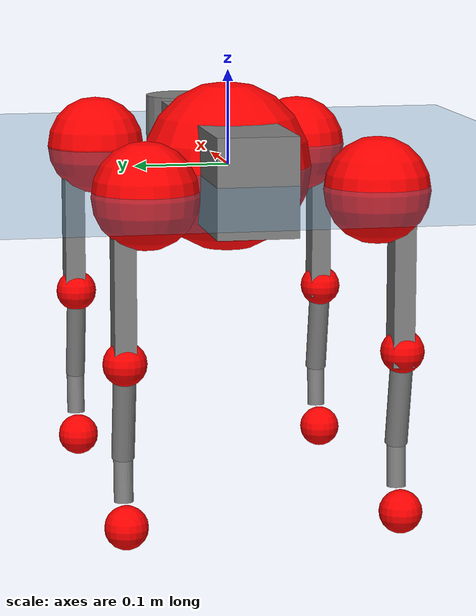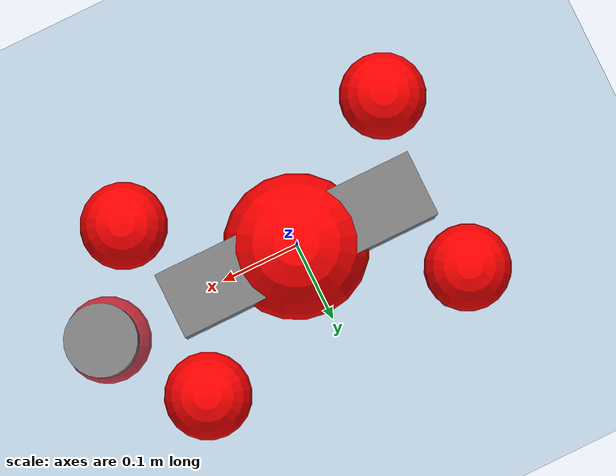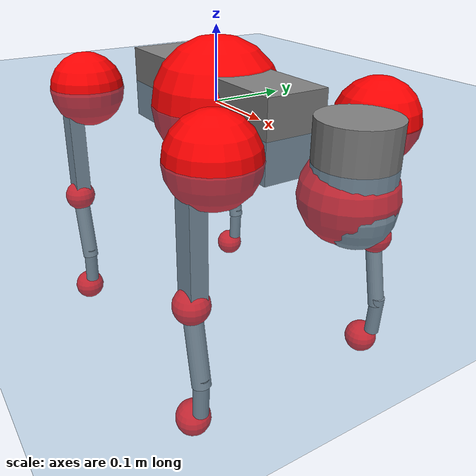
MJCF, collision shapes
<mujoco model="go2">
  <compiler angle="radian" assetdir="assets" balanceinertia="true" inertiafromgeom="false"/>

  <option timestep="0.005" density="1.2" viscosity="2e-05"/>

  <size nkey="1"/>

  <visual>
    <quality shadowsize="8192"/>
    <map shadowclip="0.5"/>
  </visual>

  <default>
    <default class="/">
      <geom contype="0" conaffinity="0" group="1" solref="-1000 -80"/>
      <site size="0.01 0.005 0.005" group="5"/>
      <general forcelimited="true" biastype="affine" gainprm="20" biasprm="0 -20 -0.5"/>
      <default class="go2">
        <joint armature="0.01" damping="0.01" frictionloss="0.2"/>
        <geom condim="1" margin="0.001"/>
        <default class="visual">
          <geom type="mesh" group="2"/>
        </default>
        <default class="collision">
          <geom group="3"/>
          <default class="foot">
            <geom size="0.022 0 0" condim="6" priority="1" friction="0.8 0.02 0.01" solimp="0.015 1 0.022"/>
          </default>
        </default>
        <default class="reward_collision_sphere">
          <geom group="5" rgba="1 0 0 1"/>
        </default>
      </default>
    </default>
  </default>

  <asset>
    <texture type="skybox" colorspace="auto" name="//unnamed_texture_0" builtin="gradient" rgb1="0.95 0.95 0.95" rgb2="0.95 0.95 0.95" width="100" height="600"/>
    <texture type="2d" colorspace="auto" name="texplane" builtin="checker" rgb1="0.345 0.575 0.748" rgb2="0.345 0.575 0.748" markrgb="1 1 1" width="512" height="512"/>
    <material name="MatPlane" class="/" texture="texplane" texuniform="true" texrepeat="2 2" specular="0.9"/>
    <material name="metal" class="/" rgba="0.9 0.95 0.95 1"/>
    <material name="black" class="/" rgba="0 0 0 1"/>
    <material name="white" class="/"/>
    <material name="gray" class="/" rgba="0.671705 0.692426 0.77427 1"/>
    <mesh name="base_0" class="/" file="base_0.obj"/>
    <mesh name="base_1" class="/" file="base_1.obj"/>
    <mesh name="base_2" class="/" file="base_2.obj"/>
    <mesh name="base_3" class="/" file="base_3.obj"/>
    <mesh name="base_4" class="/" file="base_4.obj"/>
    <mesh name="hip_0" class="/" file="hip_0.obj"/>
    <mesh name="hip_1" class="/" file="hip_1.obj"/>
    <mesh name="thigh_0" class="/" file="thigh_0.obj"/>
    <mesh name="thigh_1" class="/" file="thigh_1.obj"/>
    <mesh name="thigh_mirror_0" class="/" file="thigh_mirror_0.obj"/>
    <mesh name="thigh_mirror_1" class="/" file="thigh_mirror_1.obj"/>
    <mesh name="calf_0" class="/" file="calf_0.obj"/>
    <mesh name="calf_1" class="/" file="calf_1.obj"/>
    <mesh name="calf_mirror_0" class="/" file="calf_mirror_0.obj"/>
    <mesh name="calf_mirror_1" class="/" file="calf_mirror_1.obj"/>
    <mesh name="foot" class="/" file="foot.obj"/>
  </asset>

  <worldbody>
    <geom name="floor" class="/" size="100 100 0.125" type="plane" group="0" material="MatPlane"/>
    <light name="toplight_shadow" class="/" pos="0 0 5" dir="0.0990148 0.0990148 -0.990148" type="directional" ambient="0.04 0.04 0.04" diffuse="0.55 0.55 0.55" specular="0.12 0.12 0.12"/>
    <light name="toplight_fill" class="/" pos="0 0 5" dir="0.0990148 0.0990148 -0.990148" type="directional" castshadow="false" ambient="0.04 0.04 0.04" diffuse="0.3 0.3 0.3" specular="0.08 0.08 0.08"/>
    <body name="trunk" childclass="go2" pos="0.00119389 0.000962766 -0.00240397" quat="1 -2.93167e-05 -0.000224741 0.000927904">
      <inertial pos="0.0176652 0.0024355 -0.00344309" quat="-0.00171298 0.712384 -0.00204593 0.701784" mass="5.11229" diaginertia="0.0719683 0.0974531 0.00771882"/>
      <joint name="//unnamed_joint_0" type="free" armature="0" damping="0" frictionloss="0"/>
      <geom name="//unnamed_geom_1" class="visual" material="black" mesh="base_0"/>
      <geom name="//unnamed_geom_2" class="visual" material="black" mesh="base_1"/>
      <geom name="//unnamed_geom_3" class="visual" material="black" mesh="base_2"/>
      <geom name="//unnamed_geom_4" class="visual" material="white" mesh="base_3"/>
      <geom name="//unnamed_geom_5" class="visual" material="gray" mesh="base_4"/>
      <geom name="trunk_1" class="collision" size="0.169385 0.0420987 0.0513289" type="box"/>
      <geom name="trunk_2" class="collision" size="0.0450254 0.0405228" pos="0.261991 0 0.00787429" type="cylinder"/>
      <geom name="trunk_3" class="collision" size="0.0423238" pos="0.269345 0 -0.0472458"/>
      <geom name="//unnamed_geom_9" class="reward_collision_sphere" size="0.0900507"/>
      <geom name="//unnamed_geom_10" class="reward_collision_sphere" size="0.0540304" pos="0.257394 0 -0.0354343"/>
      <site name="imu" pos="-0.0183307 0.0133988 0.0438082" size="0.00900507"/>
      <camera name="track" pos="0 -1.98965 0" quat="0.707107 0.707107 0 0" mode="trackcom"/>
      <camera name="ego_camera" pos="0.286811 0 0.0354343" quat="-0.5 -0.5 0.5 0.5"/>
      <body name="FL_hip" pos="0.176119 0.0467761 0.00313018" quat="0.999999 3.85675e-05 0.00103153 4.48893e-05">
        <inertial pos="-0.00457589 -0.000605892 0.000810518" quat="0.499202 0.501582 0.501276 0.497931" mass="0.480652" diaginertia="0.000589083 0.000600078 0.000145718"/>
        <joint name="FL_hip_joint" pos="0 0 0" axis="0.999988 0.00273174 0.00401526" range="-1.01998 1.07059" armature="0.00902808" damping="0.0213308" frictionloss="0.180331"/>
        <geom name="//unnamed_geom_11" class="visual" material="metal" mesh="hip_0"/>
        <geom name="//unnamed_geom_12" class="visual" material="gray" mesh="hip_1"/>
        <geom name="//unnamed_geom_13" class="collision" size="0.0414233 0.0180101" pos="0 0.0795862 0" quat="0.707107 0.707107 0 0" type="cylinder"/>
        <geom name="//unnamed_geom_14" class="reward_collision_sphere" size="0.0540304" pos="0 0.0696379 0"/>
        <body name="FL_thigh" pos="0.00131952 0.0956116 0.00311759" quat="0.999999 9.28275e-05 0.000805675 0.000810595">
          <inertial pos="-0.00101191 -0.0248494 -0.027708" quat="0.829739 0.0843028 -0.0201373 0.55138" mass="0.820763" diaginertia="0.00388724 0.005426 0.000259852"/>
          <joint name="FL_thigh_joint" pos="0 0 0" axis="-0.00118101 0.999999 0.000458946" range="-1.51942 3.49813" armature="0.00814377" damping="0.014451" frictionloss="0.166002"/>
          <geom name="//unnamed_geom_15" class="visual" material="metal" mesh="thigh_0"/>
          <geom name="//unnamed_geom_16" class="visual" material="gray" mesh="thigh_1"/>
          <geom name="//unnamed_geom_17" class="collision" size="0.095904 0.0110312 0.0153086" pos="0 0 -0.0838612" quat="0.707107 0 0.707107 0" type="box"/>
          <body name="FL_calf" pos="-0.0005186 -0.0020663 -0.168971" quat="0.999999 -0.000370452 -0.00102307 0.000917479">
            <inertial pos="0.00327328 -0.000973391 -0.107989" quat="0.713201 0.00066524 0.00417686 0.700947" mass="0.175936" diaginertia="0.000955964 0.00149498 1.65e-05"/>
            <joint name="FL_calf_joint" pos="0 0 0" axis="-0.0032748 0.999786 -0.0204397" stiffness="0.0138829" range="-2.76227 -0.855976" armature="0.0100423" damping="0" frictionloss="0.203834"/>
            <geom name="//unnamed_geom_18" class="visual" material="gray" mesh="calf_0"/>
            <geom name="//unnamed_geom_19" class="visual" material="black" mesh="calf_1"/>
            <geom name="FL_calf0" class="collision" size="0.0108061 0.0540304" pos="0.00735412 0 -0.0472458" quat="0.994493 0 -0.104807 0" type="cylinder"/>
            <geom name="//unnamed_geom_21" class="collision" size="0.00990558 0.0292665" pos="0.0183853 0 -0.11654" quat="0.999688 0 0.0249974 0" type="cylinder"/>
            <geom name="//unnamed_geom_22" class="visual" pos="0 0 -0.167722" quat="1 0 0 0" material="black" mesh="foot"/>
            <geom name="FL_foot" class="foot" size="0.0170928" pos="-0.00183853 0 -0.167722"/>
            <geom name="//unnamed_geom_24" class="reward_collision_sphere" size="0.0225127"/>
            <geom name="//unnamed_geom_25" class="reward_collision_sphere" size="0.0225127" pos="-0.00183853 0 -0.167722"/>
            <site name="FL_foot" class="foot" pos="-0.00183853 0 -0.167722" size="0.00900507"/>
          </body>
        </body>
      </body>
      <body name="FR_hip" pos="0.177753 -0.0455083 -0.000965185" quat="0.999999 -5.98596e-06 -0.000743524 0.000963158">
        <inertial pos="-0.00208736 -0.0041586 -0.000211797" quat="0.506607 0.496243 0.499306 0.497781" mass="0.49182" diaginertia="0.000541315 0.000560296 0.000135385"/>
        <joint name="FR_hip_joint" pos="0 0 0" axis="0.999884 0.015195 -0.000710206" range="-1.02047 1.04537" armature="0.00939959" damping="0.00536392" frictionloss="0.158288"/>
        <geom name="//unnamed_geom_26" class="visual" pos="0 1.80676e-09 7.74957e-08" quat="4.63268e-05 1 0 0" material="metal" mesh="hip_0"/>
        <geom name="//unnamed_geom_27" class="visual" pos="0 2.92898e-09 -1.91677e-07" quat="4.63268e-05 1 0 0" material="gray" mesh="hip_1"/>
        <geom name="//unnamed_geom_28" class="collision" size="0.0414233 0.0180101" pos="0 -0.0795862 0" quat="0.707107 0.707107 0 0" type="cylinder"/>
        <geom name="//unnamed_geom_29" class="reward_collision_sphere" size="0.0540304" pos="0 -0.0696379 0"/>
        <body name="FR_thigh" pos="0.00047007 -0.0961849 0.00258271" quat="1 -0.000464375 -7.87312e-05 -0.000256707">
          <inertial pos="-0.000435818 0.0195835 -0.0246515" quat="0.562282 -0.0139527 0.0831481 0.822636" mass="0.844146" diaginertia="0.00383576 0.0054274 0.000265934"/>
          <joint name="FR_thigh_joint" pos="0 0 0" axis="-0.00136688 -0.999997 -0.00208931" range="-3.47351 1.62075" armature="0.00910418" damping="0.00687351" frictionloss="0.200608"/>
          <geom name="//unnamed_geom_30" class="visual" material="metal" mesh="thigh_mirror_0"/>
          <geom name="//unnamed_geom_31" class="visual" material="gray" mesh="thigh_mirror_1"/>
          <geom name="//unnamed_geom_32" class="collision" size="0.095904 0.0110312 0.0153086" pos="0 0 -0.0838612" quat="0.707107 0 0.707107 0" type="box"/>
          <body name="FR_calf" pos="0.00109139 -0.00278497 -0.169208" quat="1 0.000139329 6.54268e-07 1.82512e-05">
            <inertial pos="0.00544998 -0.000173076 -0.111267" quat="0.696442 -0.00706443 -0.00215143 0.717575" mass="0.177687" diaginertia="0.000982678 0.00142584 1.55352e-05"/>
            <joint name="FR_calf_joint" pos="0 0 0" axis="-0.00609912 -0.999954 -0.00737458" range="0.818836 2.77715" armature="0.00839983" damping="0.0244739" frictionloss="0.162223"/>
            <geom name="//unnamed_geom_33" class="visual" material="gray" mesh="calf_mirror_0"/>
            <geom name="//unnamed_geom_34" class="visual" material="black" mesh="calf_mirror_1"/>
            <geom name="FR_calf0" class="collision" size="0.0117066 0.0540304" pos="0.00919265 0 -0.0472458" quat="0.995004 0 -0.0998334 0" type="cylinder"/>
            <geom name="//unnamed_geom_36" class="collision" size="0.00990558 0.0292665" pos="0.0183853 0 -0.11654" quat="0.999688 0 0.0249974 0" type="cylinder"/>
            <geom name="//unnamed_geom_37" class="visual" pos="0 0 -0.167722" quat="1 0 0 0" material="black" mesh="foot"/>
            <geom name="FR_foot" class="foot" size="0.0202567" pos="-0.00183853 0 -0.167722"/>
            <geom name="//unnamed_geom_39" class="reward_collision_sphere" size="0.0225127"/>
            <geom name="//unnamed_geom_40" class="reward_collision_sphere" size="0.0225127" pos="-0.00183853 0 -0.167722"/>
            <site name="FR_foot" class="foot" pos="-0.00183853 0 -0.167722" size="0.00900507"/>
          </body>
        </body>
      </body>
      <body name="RL_hip" pos="-0.17651 0.0451916 -0.00301866" quat="1 0.000303996 0.000146564 -0.000216089">
        <inertial pos="0.00652437 0.00380791 -0.00269031" quat="0.507801 0.500337 0.496294 0.495473" mass="0.506044" diaginertia="0.000572534 0.000581313 0.000148994"/>
        <joint name="RL_hip_joint" pos="0 0 0" axis="-0.999849 0.0105719 -0.0137886" stiffness="0.0127153" range="-1.03032 0.989407" armature="0.00796011" damping="0" frictionloss="0.199851"/>
        <geom name="//unnamed_geom_41" class="visual" pos="-1.1485e-09 0 -2.25133e-07" quat="4.63268e-05 0 1 0" material="metal" mesh="hip_0"/>
        <geom name="//unnamed_geom_42" class="visual" pos="-1.86186e-09 0 -1.99661e-07" quat="4.63268e-05 0 1 0" material="gray" mesh="hip_1"/>
        <geom name="//unnamed_geom_43" class="collision" size="0.0414233 0.0180101" pos="0 0.0795862 0" quat="0.707107 0.707107 0 0" type="cylinder"/>
        <geom name="//unnamed_geom_44" class="reward_collision_sphere" size="0.0540304" pos="0 0.0696379 0"/>
        <body name="RL_thigh" pos="0.000630325 0.0920779 0.00166851" quat="1 -0.000238139 -0.000186592 -0.000306141">
          <inertial pos="-0.00334805 -0.0222447 -0.0261648" quat="0.833645 0.0860339 -0.0178656 0.545266" mass="0.866076" diaginertia="0.00391109 0.00570168 0.000277914"/>
          <joint name="RL_thigh_joint" pos="0 0 0" axis="-0.0145564 0.999867 0.00740596" stiffness="0.0114064" range="-0.537621 4.53491" armature="0.0101706" damping="0" frictionloss="0.181992"/>
          <geom name="//unnamed_geom_45" class="visual" material="metal" mesh="thigh_0"/>
          <geom name="//unnamed_geom_46" class="visual" material="gray" mesh="thigh_1"/>
          <geom name="//unnamed_geom_47" class="collision" size="0.095904 0.0110312 0.0153086" pos="0 0 -0.0838612" quat="0.707107 0 0.707107 0" type="box"/>
          <body name="RL_calf" pos="0.000362777 -0.000965302 -0.169559" quat="1 -9.08292e-06 5.50723e-05 -0.00010487">
            <inertial pos="0.00415148 0.000921443 -0.112062" quat="0.708301 0.00749945 0.00671663 0.705838" mass="0.17945" diaginertia="0.000961855 0.00143616 1.60925e-05"/>
            <joint name="RL_calf_joint" pos="0 0 0" axis="-0.00301771 0.999977 -0.00611755" range="-2.71711 -0.790268" armature="0.0101259" damping="0" frictionloss="0.19425"/>
            <geom name="//unnamed_geom_48" class="visual" material="gray" mesh="calf_0"/>
            <geom name="//unnamed_geom_49" class="visual" material="black" mesh="calf_1"/>
            <geom name="RL_calf0" class="collision" size="0.0117066 0.0540304" pos="0.00919265 0 -0.0472458" quat="0.995004 0 -0.0998334 0" type="cylinder"/>
            <geom name="//unnamed_geom_51" class="collision" size="0.00990558 0.0292665" pos="0.0183853 0 -0.11654" quat="0.999688 0 0.0249974 0" type="cylinder"/>
            <geom name="//unnamed_geom_52" class="visual" pos="0 0 -0.167722" quat="1 0 0 0" material="black" mesh="foot"/>
            <geom name="RL_foot" class="foot" size="0.0162067" pos="-0.00183853 0 -0.167722"/>
            <geom name="//unnamed_geom_54" class="reward_collision_sphere" size="0.0225127"/>
            <geom name="//unnamed_geom_55" class="reward_collision_sphere" size="0.0225127" pos="-0.00183853 0 -0.167722"/>
            <site name="RL_foot" class="foot" pos="-0.00183853 0 -0.167722" size="0.00900507"/>
          </body>
        </body>
      </body>
      <body name="RR_hip" pos="-0.176012 -0.0494756 -0.00324748" quat="1 -0.000302565 -0.000183423 -0.000488484">
        <inertial pos="0.00652155 0.00100769 -0.00191281" quat="0.503738 0.487943 0.493715 0.514204" mass="0.495149" diaginertia="0.000579266 0.00058368 0.000147305"/>
        <joint name="RR_hip_joint" pos="0 0 0" axis="-0.999974 -0.00587181 -0.00428675" stiffness="0.010292" range="-1.01016 1.03652" armature="0.00784221" damping="0.00450245" frictionloss="0.176784"/>
        <geom name="//unnamed_geom_56" class="visual" pos="1.15112e-09 1.80676e-09 -3.02629e-07" quat="2.14617e-09 4.63268e-05 4.63268e-05 -1" material="metal" mesh="hip_0"/>
        <geom name="//unnamed_geom_57" class="visual" pos="1.85539e-09 2.92898e-09 -7.98409e-09" quat="2.14617e-09 4.63268e-05 4.63268e-05 -1" material="gray" mesh="hip_1"/>
        <geom name="//unnamed_geom_58" class="collision" size="0.0414233 0.0180101" pos="0 -0.0795862 0" quat="0.707107 0.707107 0 0" type="cylinder"/>
        <geom name="//unnamed_geom_59" class="reward_collision_sphere" size="0.0540304" pos="0 -0.0696379 0"/>
        <body name="RR_thigh" pos="0.000226277 -0.0959026 -0.000675618" quat="1 7.87156e-05 9.35766e-05 -0.000147868">
          <inertial pos="-0.00241098 0.0227434 -0.0256799" quat="0.553181 -0.019028 0.0839256 0.828605" mass="0.817565" diaginertia="0.0039417 0.0059051 0.000267408"/>
          <joint name="RR_thigh_joint" pos="0 0 0" axis="0.00127463 -0.999998 0.00154584" stiffness="0.00895169" range="-4.54416 0.570875" armature="0.00948549" damping="0.0125633" frictionloss="0.177383"/>
          <geom name="//unnamed_geom_60" class="visual" material="metal" mesh="thigh_mirror_0"/>
          <geom name="//unnamed_geom_61" class="visual" material="gray" mesh="thigh_mirror_1"/>
          <geom name="//unnamed_geom_62" class="collision" size="0.095904 0.0110312 0.0153086" pos="0 0 -0.0838612" quat="0.707107 0 0.707107 0" type="box"/>
          <body name="RR_calf" pos="0.00133143 -0.00250609 -0.165858" quat="1 0.000498193 0.000164467 -9.87736e-05">
            <inertial pos="0.00281442 -0.000260319 -0.111854" quat="0.702203 -0.0127422 -0.00883072 0.711808" mass="0.178429" diaginertia="0.00100017 0.0014251 1.66059e-05"/>
            <joint name="RR_calf_joint" pos="0 0 0" axis="0.00506818 -0.999889 0.0139981" stiffness="0.0023447" range="0.816191 2.71272" armature="0.00865061" damping="0.0214479" frictionloss="0.173352"/>
            <geom name="//unnamed_geom_63" class="visual" material="gray" mesh="calf_mirror_0"/>
            <geom name="//unnamed_geom_64" class="visual" material="black" mesh="calf_mirror_1"/>
            <geom name="RR_calf0" class="collision" size="0.0117066 0.0540304" pos="0.00919265 0 -0.0472458" quat="0.995004 0 -0.0998334 0" type="cylinder"/>
            <geom name="//unnamed_geom_66" class="collision" size="0.00990558 0.0292665" pos="0.0183853 0 -0.11654" quat="0.999688 0 0.0249974 0" type="cylinder"/>
            <geom name="//unnamed_geom_67" class="visual" pos="0 0 -0.167722" quat="1 0 0 0" material="black" mesh="foot"/>
            <geom name="RR_foot" class="foot" size="0.0190087" pos="-0.00183853 0 -0.167722"/>
            <geom name="//unnamed_geom_69" class="reward_collision_sphere" size="0.0225127"/>
            <geom name="//unnamed_geom_70" class="reward_collision_sphere" size="0.0225127" pos="-0.00183853 0 -0.167722"/>
            <site name="RR_foot" class="foot" pos="-0.00183853 0 -0.167722" size="0.00900507"/>
          </body>
        </body>
      </body>
    </body>
  </worldbody>

  <contact>
    <pair class="/" geom1="floor" geom2="FL_foot" name="//unnamed_contact_0"/>
    <pair class="/" geom1="floor" geom2="FR_foot" name="//unnamed_contact_1"/>
    <pair class="/" geom1="floor" geom2="RL_foot" name="//unnamed_contact_2"/>
    <pair class="/" geom1="floor" geom2="RR_foot" name="//unnamed_contact_3"/>
  </contact>

  <actuator>
    <general name="FL_hip" class="/" joint="FL_hip_joint" forcerange="-21.5732 21.5732" gainprm="19.343" biasprm="0 -19.343 -0.420701"/>
    <general name="FL_thigh" class="/" joint="FL_thigh_joint" forcerange="-19.2996 19.2996" gainprm="19.343" biasprm="0 -19.343 -0.420701"/>
    <general name="FL_calf" class="/" joint="FL_calf_joint" forcerange="-42.0476 42.0476" gainprm="19.343" biasprm="0 -19.343 -0.420701"/>
    <general name="FR_hip" class="/" joint="FR_hip_joint" forcerange="-21.5697 21.5697" gainprm="19.343" biasprm="0 -19.343 -0.420701"/>
    <general name="FR_thigh" class="/" joint="FR_thigh_joint" forcerange="-23.3822 23.3822" gainprm="19.343" biasprm="0 -19.343 -0.420701"/>
    <general name="FR_calf" class="/" joint="FR_calf_joint" forcerange="-40.4364 40.4364" gainprm="19.343" biasprm="0 -19.343 -0.420701"/>
    <general name="RL_hip" class="/" joint="RL_hip_joint" forcerange="-22.6072 22.6072" gainprm="19.343" biasprm="0 -19.343 -0.420701"/>
    <general name="RL_thigh" class="/" joint="RL_thigh_joint" forcerange="-19.463 19.463" gainprm="19.343" biasprm="0 -19.343 -0.420701"/>
    <general name="RL_calf" class="/" joint="RL_calf_joint" forcerange="-38.0735 38.0735" gainprm="19.343" biasprm="0 -19.343 -0.420701"/>
    <general name="RR_hip" class="/" joint="RR_hip_joint" forcerange="-19.1115 19.1115" gainprm="19.343" biasprm="0 -19.343 -0.420701"/>
    <general name="RR_thigh" class="/" joint="RR_thigh_joint" forcerange="-22.8737 22.8737" gainprm="19.343" biasprm="0 -19.343 -0.420701"/>
    <general name="RR_calf" class="/" joint="RR_calf_joint" forcerange="-40.3704 40.3704" gainprm="19.343" biasprm="0 -19.343 -0.420701"/>
  </actuator>

  <sensor>
    <gyro site="imu" name="imu_angular_velocity"/>
    <velocimeter site="imu" name="imu_linear_velocity"/>
    <framelinvel objtype="site" objname="FL_foot" name="FL_foot_global_linear_velocity"/>
    <framelinvel objtype="site" objname="FR_foot" name="FR_foot_global_linear_velocity"/>
    <framelinvel objtype="site" objname="RL_foot" name="RL_foot_global_linear_velocity"/>
    <framelinvel objtype="site" objname="RR_foot" name="RR_foot_global_linear_velocity"/>
  </sensor>

  <keyframe>
    <key name="home" qpos="0 0 0.325 1 0 0 0 0.1 0.8 -1.5 -0.1 -0.8 1.5 -0.1 0.8 -1.5 0.1 -0.8 1.5"/>
  </keyframe>
</mujoco>
